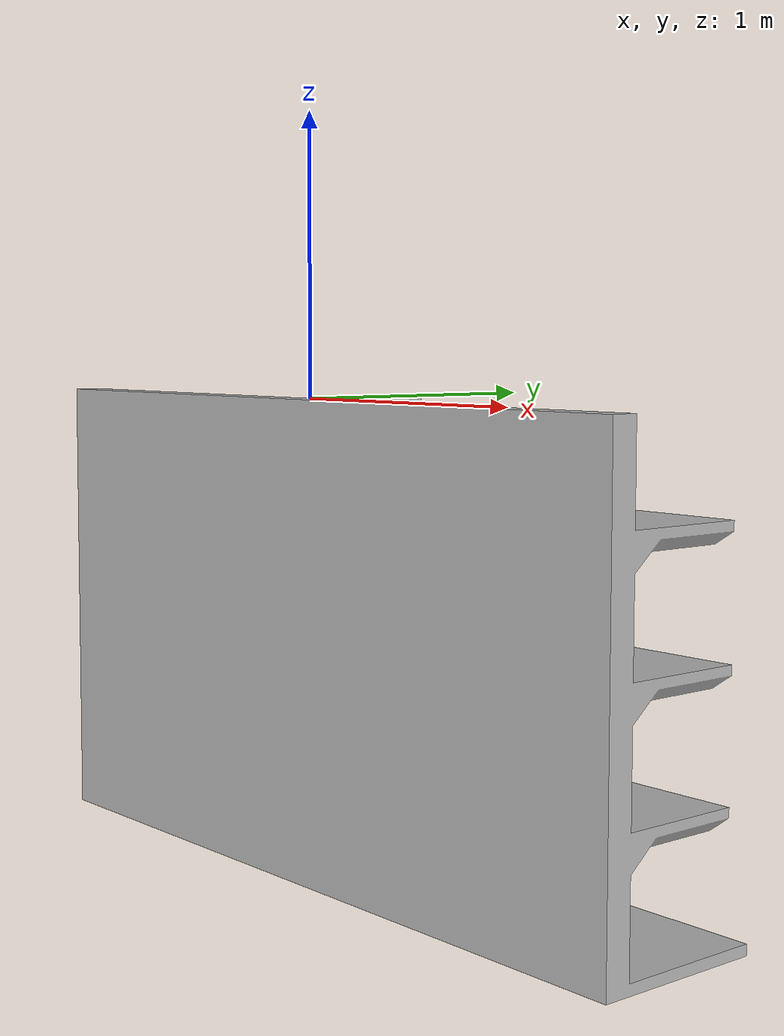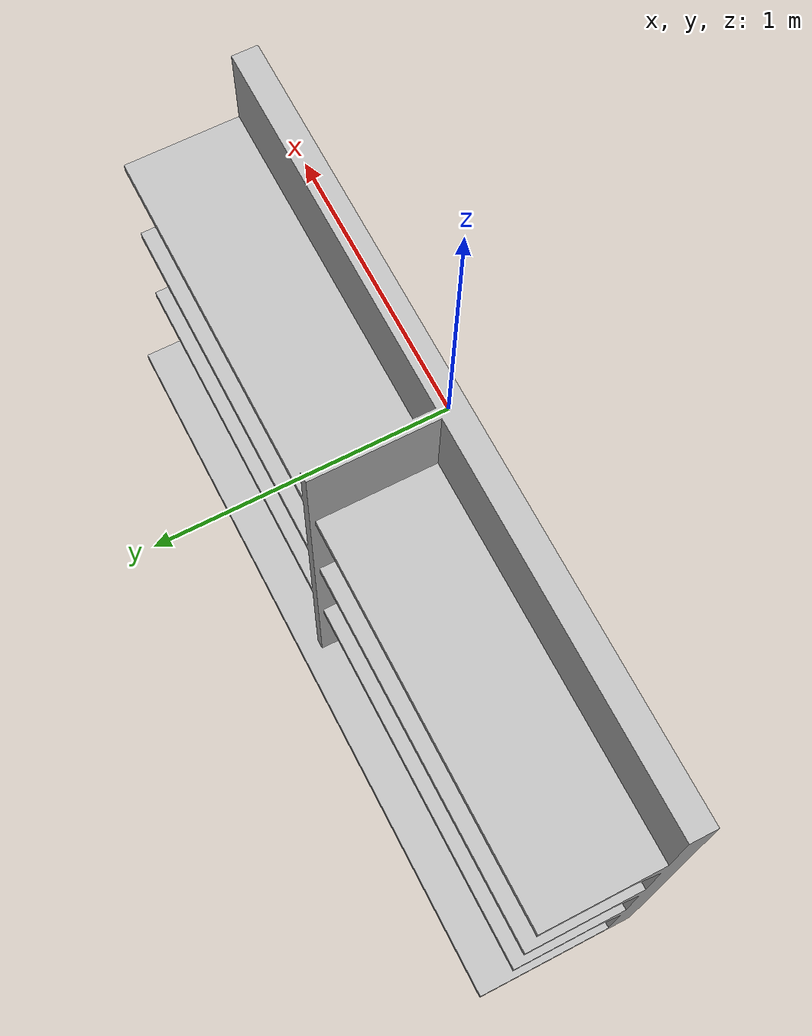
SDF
<sdf version='1.7'>
  <model name='rack'>
    <link name='base_link'>
      <inertial>
        <pose>0 0.102784 -0.917318 0 -0 0</pose>
        <mass>910.918</mass>
        <inertia>
          <ixx>250.063</ixx>
          <ixy>2.53768e-14</ixy>
          <ixz>9.01471e-14</ixz>
          <iyy>885.929</iyy>
          <iyz>9.52421</iyz>
          <izz>685.987</izz>
        </inertia>
      </inertial>
      <collision name='base_link_collision'>
        <pose>0 0 0 0 -0 0</pose>
        <geometry>
          <mesh>
            <scale>1 1 1</scale>
            <uri>model://my_store_rack/meshes/base_link.STL</uri>
          </mesh>
        </geometry>
      </collision>
      <visual name='base_link_visual'>
        <pose>0 0 0 0 -0 0</pose>
        <geometry>
          <mesh>
            <scale>1 1 1</scale>
            <uri>model://my_store_rack/meshes/base_link.STL</uri>
          </mesh>
        </geometry>
      </visual>
    </link>
  </model>
</sdf>
